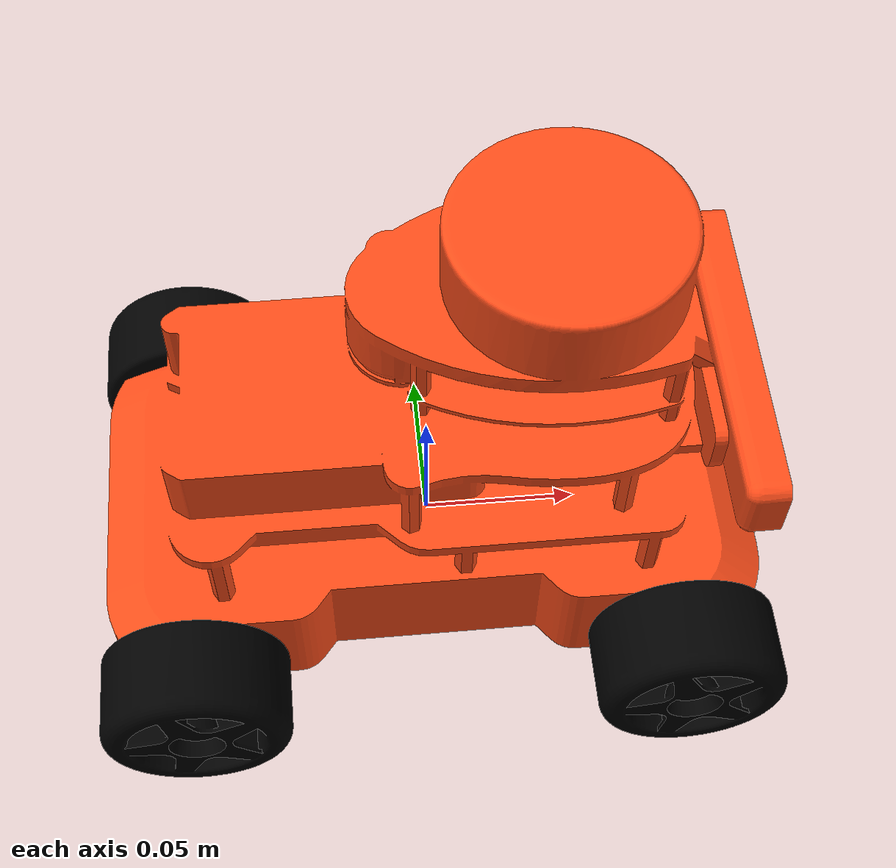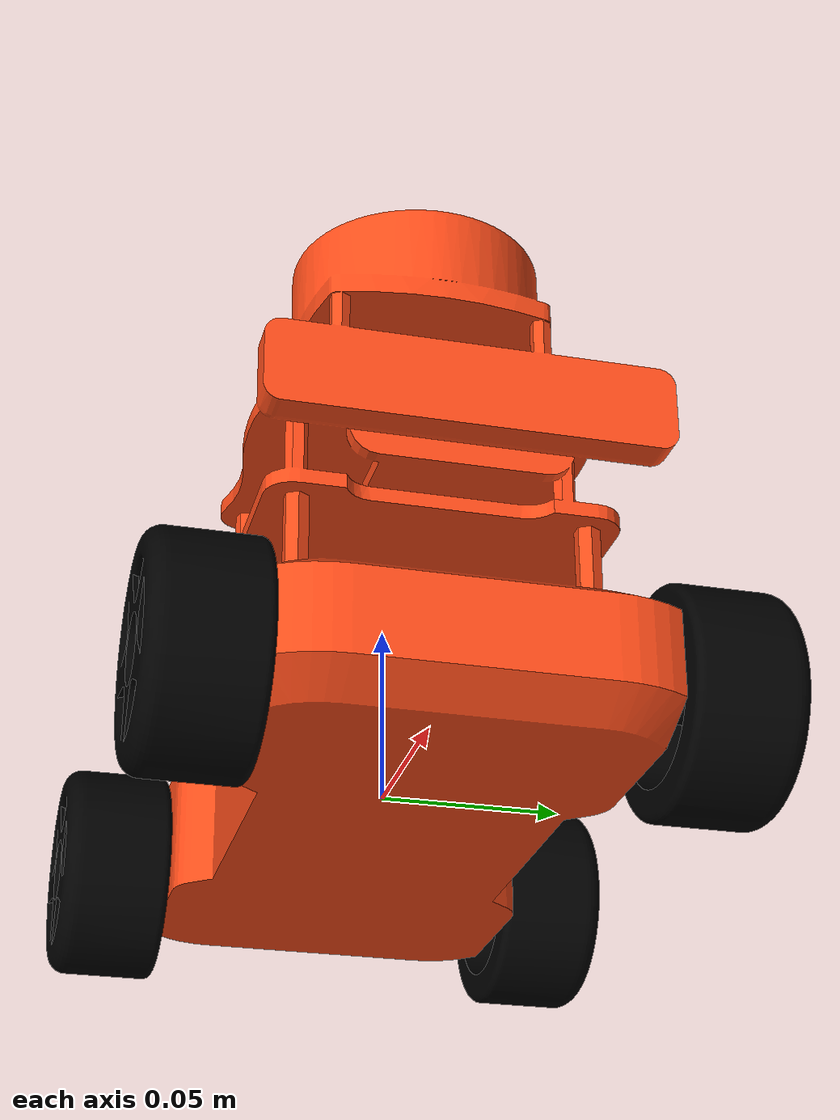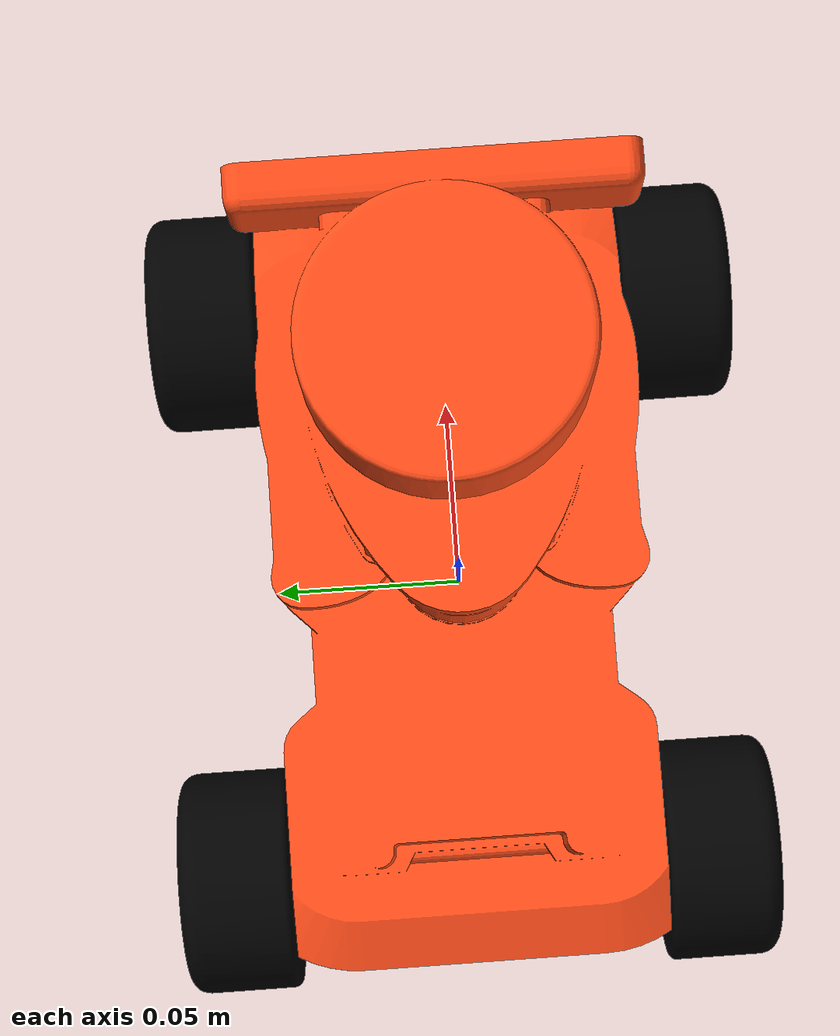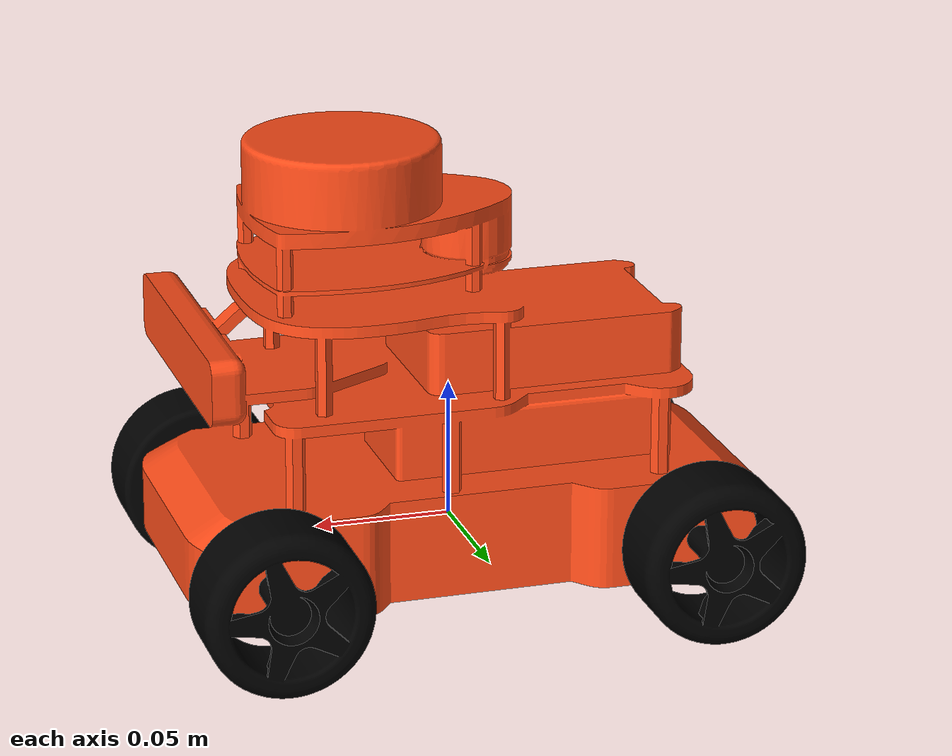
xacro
<?xml version="1.0"?>
<robot xmlns:xacro="http://www.ros.org/wiki/xacro">

    <xacro:include filename="inertial_macros.xacro"/>

    <xacro:property name="chassis_length"     value="0.210"/>
    <xacro:property name="chassis_width"      value="0.1005"/>
    <xacro:property name="chassis_height"     value="0.055"/>
    <xacro:property name="chassis_mass"       value="1.0"/>
    <xacro:property name="wheel_radius"       value="0.03"/>
    <xacro:property name="wheel_thickness"    value="0.03"/>
    <xacro:property name="wheel_offset_y"     value="0.06525"/>      <!--  (distance between left wheels and right wheels)/2 -->
    <xacro:property name="wheel_offset_x"     value="0.0785"/>      <!--  (distance between front wheels and back wheels)/2  -->
    <xacro:property name="wheel_mass"         value="0.06"/>

    <xacro:property name="collision_chassis_length"             value="0.21"/>
    <xacro:property name="collision_chassis_width"              value="0.1005"/>
    <xacro:property name="collision_chassis_height"             value="0.085"/>
    <xacro:property name="collision_chassis_height_offset"      value="${collision_chassis_height/2}"/>

    <material name="white">
        <color rgba="1 1 1 1" />
    </material>

    <material name="orange">
        <color rgba="1 0.3 0.1 1"/>
    </material>

    <material name="blue">
        <color rgba="0.2 0.2 1 1"/>
    </material>

    <material name="black">
        <color rgba="0 0 0 1"/>
    </material>

    <material name="red">
        <color rgba="1 0 0 1"/>
    </material>

    <material name="green">
        <color rgba="0 1 0 1"/>
    </material>

    <!-- BASE_FOOTPRINT LINK  (shadow of the base_link in 2D plane)-->

    <link name="base_footprint"/>

    <!-- BASE LINK -->

    <link name="base_link"/>

    <!-- BASE JOINT -->

    <joint name="base_joint" type="fixed">
        <parent link="base_link"/>
        <child link="base_footprint"/>
        <origin xyz="0 0 -0.030" rpy="0 0 0"/>
    </joint>

    <!-- CHASSIS LINK -->

    <link name="chassis_link">
        <visual>
            <origin xyz="0 0 -0.015" rpy="0 0 0"/>
            <geometry>
                <mesh filename="package://slambot/meshes/slambot_body.stl" scale="1.0 1.0 1.0"/>
            </geometry>
            <material name="orange"/>
        </visual>

        <collision>
            <origin xyz="0 0 ${collision_chassis_height_offset}"/>
            <geometry>
                <box size="${collision_chassis_length} ${collision_chassis_width} ${collision_chassis_height}"/>
            </geometry>
        </collision>

        <xacro:inertial_box mass="${chassis_mass}" x="${chassis_length}" y="${chassis_width}" z="${chassis_height}">
            <origin xyz="0 0 0" rpy="0 0 0"/>
        </xacro:inertial_box>
    </link>

    <!-- CHASSIS JOINT -->

    <joint name="chassis_joint" type="fixed">
        <parent link="base_link"/>
        <child link="chassis_link"/>
        <origin xyz="0 0 0" rpy="0 0 0"/>
    </joint>

    <!-- WHEEL LEFT LINK -->

    <link name="left_wheel">
        <visual>
            <origin xyz="0 0 0" rpy="0 0 0"/>
            <geometry>
                <mesh filename="package://slambot/meshes/wheel.stl" scale="1.0 1.0 1.0"/>
            </geometry>
            <material name="black"/>
        </visual>
        <collision>
            <geometry>
                <sphere radius="${wheel_radius}"/>
            </geometry>
        </collision>
        <xacro:inertial_sphere mass="${wheel_mass}" radius="${wheel_radius}">
            <origin xyz="0 0 0" rpy="0 0 0"/>
        </xacro:inertial_sphere>
    </link>

    <!-- LEFT WHEEL JOINT -->

    <joint name="left_wheel_joint" type="continuous">
        <parent link="base_link"/>
        <child link="left_wheel"/>
        <origin xyz="-${wheel_offset_x} ${wheel_offset_y} 0" rpy="0 0 0"/>
        <axis xyz="0 1 0"/>
    </joint>

    <!-- RIGHT WHEEL LINK -->

    <link name="right_wheel">
        <visual>
            <origin xyz="0 0 0" rpy="0 0 ${pi}"/>
            <geometry>
                <mesh filename="package://slambot/meshes/wheel.stl" scale="1.0 1.0 1.0"/>
            </geometry>
            <material name="black"/>
        </visual>
        <collision>
            <geometry>
                <sphere radius="${wheel_radius}"/>
            </geometry>
        </collision>
        <xacro:inertial_sphere mass="${wheel_mass}" radius="${wheel_radius}">
            <origin xyz="0 0 0" rpy="0 0 0"/>
        </xacro:inertial_sphere>
    </link>

    <!-- RIGHT WHEEL JOINT -->

    <joint name="right_wheel_joint" type="continuous">
        <parent link="base_link"/>
        <child link="right_wheel"/>
        <origin xyz="-${wheel_offset_x} -${wheel_offset_y} 0" rpy="0 0 0"/>
        <axis xyz="0 1 0"/>
    </joint>

    <!-- ________________ Fixed Wheels __________________-->

    <!-- FL WHEEL LINK -->

    <link name="fl_wheel">
        <visual>
            <origin xyz="0 0 0" rpy="0 0 0"/>
            <geometry>
                <mesh filename="package://slambot/meshes/wheel.stl" scale="1.0 1.0 1.0"/>
            </geometry>
            <material name="black"/>
        </visual>
        <collision>
            <geometry>
                <sphere radius="${wheel_radius}"/>
            </geometry>
        </collision>
        <xacro:inertial_sphere mass="${wheel_mass}" radius="${wheel_radius}">
            <origin xyz="0 0 0" rpy="0 0 0"/>
        </xacro:inertial_sphere>
    </link>

    <!-- FL WHEEL JOINT -->

    <joint name="fl_wheel_joint" type="fixed">
        <parent link="base_link"/>
        <child link="fl_wheel"/>
        <origin xyz="${wheel_offset_x} ${wheel_offset_y} 0" rpy="0 0 0"/>
    </joint>

    <!-- FR WHEEL LINK -->

    <link name="fr_wheel">
        <visual>
            <origin xyz="0 0 0" rpy="0 0 ${pi}"/>
            <geometry>
                <mesh filename="package://slambot/meshes/wheel.stl" scale="1.0 1.0 1.0"/>
            </geometry>
            <material name="black"/>
        </visual>
        <collision>
            <geometry>
                <sphere radius="${wheel_radius}"/>
            </geometry>
        </collision>
        <xacro:inertial_sphere mass="${wheel_mass}" radius="${wheel_radius}">
            <origin xyz="0 0 0" rpy="0 0 0"/>
        </xacro:inertial_sphere>
    </link>

    <!-- FR WHEEL JOINT -->

    <joint name="fr_wheel_joint" type="fixed">
        <parent link="base_link"/>
        <child link="fr_wheel"/>
        <origin xyz="${wheel_offset_x} -${wheel_offset_y} 0" rpy="0 0 0"/>
    </joint>

</robot>

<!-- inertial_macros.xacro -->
<robot xmlns:xacro="http://www.ros.org/wiki/xacro" >

    <xacro:macro name="inertial_sphere" params="mass radius *origin">
        <inertial>
            <xacro:insert_block name="origin"/>
            <mass value="${mass}" />
            <inertia ixx="${(2/5) * mass * (radius*radius)}" ixy="0.0" ixz="0.0"
                    iyy="${(2/5) * mass * (radius*radius)}" iyz="0.0"
                    izz="${(2/5) * mass * (radius*radius)}" />
        </inertial>
    </xacro:macro>

    <xacro:macro name="inertial_box" params="mass x y z *origin">
        <inertial>
            <xacro:insert_block name="origin"/>
            <mass value="${mass}" />
            <inertia ixx="${(1/12) * mass * (y*y+z*z)}" ixy="0.0" ixz="0.0"
                    iyy="${(1/12) * mass * (x*x+z*z)}" iyz="0.0"
                    izz="${(1/12) * mass * (x*x+y*y)}" />
        </inertial>
    </xacro:macro>

    <xacro:macro name="inertial_cylinder" params="mass length radius *origin">
        <inertial>
            <xacro:insert_block name="origin"/>
            <mass value="${mass}" />
            <inertia ixx="${(1/12) * mass * (3*radius*radius + length*length)}" ixy="0.0" ixz="0.0"
                    iyy="${(1/12) * mass * (3*radius*radius + length*length)}" iyz="0.0"
                    izz="${(1/2) * mass * (radius*radius)}" />
        </inertial>
    </xacro:macro>

</robot>
